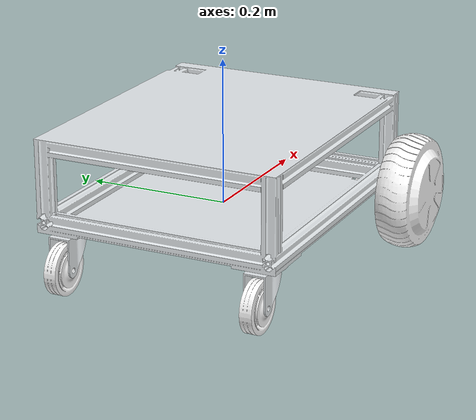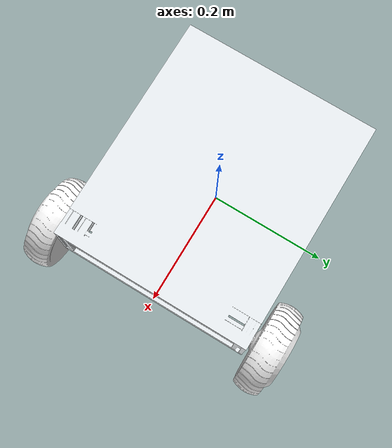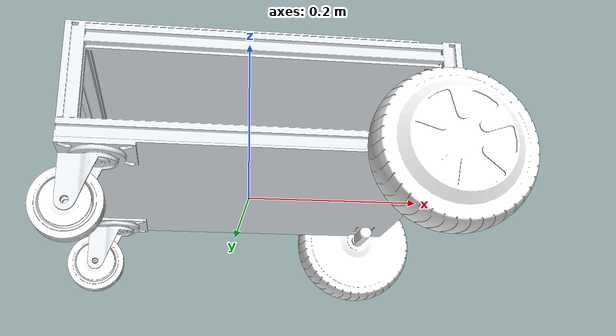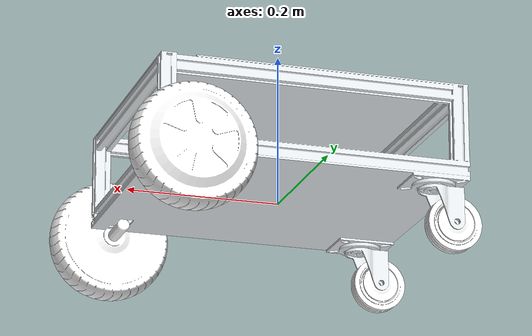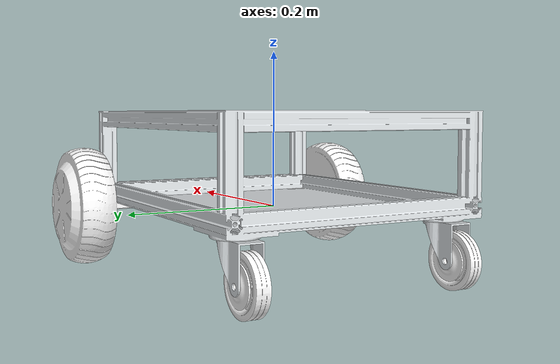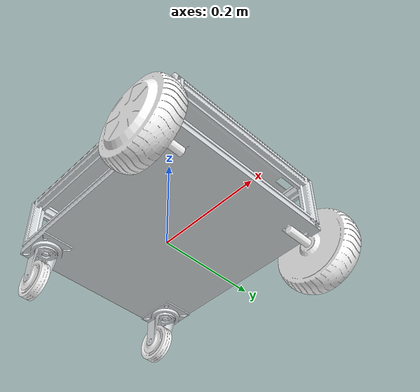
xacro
<?xml version="1.0" encoding="utf-8"?>
<robot xmlns:xacro="http://www.ros.org/wiki/xacro"
	name="blattoidea">
<link name="base_link" />
<joint name="base_link_to_chassis" type="fixed">
    <parent link="base_link"/>
    <child link="chassis"/>
  </joint>
  <link
    name="chassis">
    <inertial>
      <origin
        xyz="0.0045146 -5.164E-15 0.057846"
        rpy="0 0 0" />
      <mass
        value="3.1167" />
      <inertia
        ixx="0.019062"
        ixy="-7.8129E-14"
        ixz="-1.0872E-16"
        iyy="0.027663"
        iyz="-6.4246E-16"
        izz="0.046295" />
    </inertial>
    <visual>
      <origin
        xyz="0 0 0"
        rpy="0 0 0" />
      <geometry>
        <mesh
          filename="package://blattoidea/meshes/base_link.STL" />
      </geometry>
      <material
        name="">
        <color
          rgba="0.89804 0.91765 0.92941 1" />
      </material>
    </visual>
    <collision>
      <origin
        xyz="0 0 0"
        rpy="0 0 0" />
      <geometry>
        <mesh
          filename="package://blattoidea/meshes/base_link.STL" />
      </geometry>
    </collision>
  </link>
  <link
    name="lw_Link">
    <inertial>
      <origin
        xyz="0.080855 -1.8595E-13 -7.2809E-06"
        rpy="0 0 0" />
      <mass
        value="0.97717" />
      <inertia
        ixx="0.0027567"
        ixy="-1.0351E-14"
        ixz="-3.9098E-07"
        iyy="0.001617"
        iyz="4.5745E-16"
        izz="0.0016171" />
    </inertial>
    <visual>
      <origin
        xyz="0 0 0"
        rpy="0 0 0" />
      <geometry>
        <mesh
          filename="package://blattoidea/meshes/lw_Link.STL" />
      </geometry>
      <material
        name="">
        <color
          rgba="1 1 1 1" />
      </material>
    </visual>
    <collision>
      <origin
        xyz="0 0 0"
        rpy="0 0 0" />
      <geometry>
        <mesh
          filename="package://blattoidea/meshes/lw_Link.STL" />
      </geometry>
    </collision>
  </link>
  <joint
    name="lw_joint"
    type="continuous">
    <origin
      xyz="0.17114 0.1226 -0.006"
      rpy="-1.5708 0 1.5708" />
    <parent
      link="base_link" />
    <child
      link="lw_Link" />
    <axis
      xyz="1 0 0" />
      <dynamics damping="0.0" friction="0.0"/>
  </joint>
  <link
    name="rw_Link">
    <inertial>
      <origin
        xyz="0.080855 2.7863E-14 -7.2809E-06"
        rpy="0 0 0" />
      <mass
        value="0.97717" />
      <inertia
        ixx="0.0027567"
        ixy="-1.035E-14"
        ixz="-3.9098E-07"
        iyy="0.001617"
        iyz="4.5874E-16"
        izz="0.0016171" />
    </inertial>
    <visual>
      <origin
        xyz="0 0 0"
        rpy="0 0 0" />
      <geometry>
        <mesh
          filename="package://blattoidea/meshes/rw_Link.STL" />
      </geometry>
      <material
        name="">
        <color
          rgba="1 1 1 1" />
      </material>
    </visual>
    <collision>
      <origin
        xyz="0 0 0"
        rpy="0 0 0" />
      <geometry>
        <mesh
          filename="package://blattoidea/meshes/rw_Link.STL" />
      </geometry>
    </collision>
  </link>
  <joint
    name="rw_joint"
    type="continuous">
    <origin
      xyz="0.17114 -0.1226 -0.006"
      rpy="1.5708 0 -1.5708" />
    <parent
      link="base_link" />
    <child
      link="rw_Link" />
    <axis
      xyz="-1 0 0" />
      <dynamics damping="0.0" friction="0.0"/>
  </joint>
  <link
    name="r_caster_Link">
    <inertial>
      <origin
        xyz="-1.8867E-08 -0.017703 0.012932"
        rpy="0 0 0" />
      <mass
        value="0.026461" />
      <inertia
        ixx="1.1218E-05"
        ixy="3.2756E-12"
        ixz="-1.1431E-12"
        iyy="9.1178E-06"
        iyz="2.5189E-06"
        izz="1.0862E-05" />
    </inertial>
    <visual>
      <origin
        xyz="0 0 0"
        rpy="0 0 0" />
      <geometry>
        <mesh
          filename="package://blattoidea/meshes/r_caster_Link.STL" />
      </geometry>
      <material
        name="">
        <color
          rgba="0.89804 0.91765 0.92941 1" />
      </material>
    </visual>
    <collision>
      <origin
        xyz="0 0 0"
        rpy="0 0 0" />
      <geometry>
        <mesh
          filename="package://blattoidea/meshes/r_caster_Link.STL" />
      </geometry>
    </collision>
  </link>
  <joint
    name="r_caster_joint"
    type="continuous">
    <origin
      xyz="-0.15936 -0.14 -0.0051144"
      rpy="1.5182 0 -1.5708" />
    <parent
      link="base_link" />
    <child
      link="r_caster_Link" />
    <axis
      xyz="0 0.99862 0.052537" />
      <dynamics damping="0.0" friction="0.0"/>
  </joint>
  <link
    name="rc_wheel_Link">
    <inertial>
      <origin
        xyz="2.8588E-14 -7.8992E-14 2.9227E-14"
        rpy="0 0 0" />
      <mass
        value="0.0499" />
      <inertia
        ixx="3.5408E-05"
        ixy="1.3756E-22"
        ixz="-9.8358E-23"
        iyy="1.8462E-05"
        iyz="-2.8196E-22"
        izz="1.8462E-05" />
    </inertial>
    <visual>
      <origin
        xyz="0 0 0"
        rpy="0 0 0" />
      <geometry>
        <mesh
          filename="package://blattoidea/meshes/rc_wheel_Link.STL" />
      </geometry>
      <material
        name="">
        <color
          rgba="1 1 1 1" />
      </material>
    </visual>
    <collision>
      <origin
        xyz="0 0 0"
        rpy="0 0 0" />
      <geometry>
        <mesh
          filename="package://blattoidea/meshes/rc_wheel_Link.STL" />
      </geometry>
    </collision>
  </link>
  <joint
    name="rc_wheel_joint"
    type="continuous">
    <origin
      xyz="0 -0.049133 0.02245"
      rpy="-0.052561 0 3.1416" />
    <parent
      link="r_caster_Link" />
    <child
      link="rc_wheel_Link" />
    <axis
      xyz="1 0 0" />
      <dynamics damping="0.0" friction="0.0"/>
  </joint>
  <link
    name="l_caster_Link">
    <inertial>
      <origin
        xyz="-1.8867E-08 -0.017703 0.012932"
        rpy="0 0 0" />
      <mass
        value="0.026461" />
      <inertia
        ixx="1.1218E-05"
        ixy="3.2756E-12"
        ixz="-1.1431E-12"
        iyy="9.1178E-06"
        iyz="2.5189E-06"
        izz="1.0862E-05" />
    </inertial>
    <visual>
      <origin
        xyz="0 0 0"
        rpy="0 0 0" />
      <geometry>
        <mesh
          filename="package://blattoidea/meshes/l_caster_Link.STL" />
      </geometry>
      <material
        name="">
        <color
          rgba="0.89804 0.91765 0.92941 1" />
      </material>
    </visual>
    <collision>
      <origin
        xyz="0 0 0"
        rpy="0 0 0" />
      <geometry>
        <mesh
          filename="package://blattoidea/meshes/l_caster_Link.STL" />
      </geometry>
    </collision>
  </link>
  <joint
    name="l_caster_joint"
    type="continuous">
    <origin
      xyz="-0.15936 0.14 -0.0051144"
      rpy="1.5182 0 -1.5708" />
    <parent
      link="base_link" />
    <child
      link="l_caster_Link" />
    <axis
      xyz="0 0.99862 0.052537" />
      <dynamics damping="0.0" friction="0.0"/>
  </joint>
  <link
    name="lc_wheel_Link">
    <inertial>
      <origin
        xyz="3.7886E-14 3.1898E-14 1.2351E-14"
        rpy="0 0 0" />
      <mass
        value="0.0499" />
      <inertia
        ixx="3.5408E-05"
        ixy="5.3767E-22"
        ixz="-9.5971E-22"
        iyy="1.8462E-05"
        iyz="2.3036E-21"
        izz="1.8462E-05" />
    </inertial>
    <visual>
      <origin
        xyz="0 0 0"
        rpy="0 0 0" />
      <geometry>
        <mesh
          filename="package://blattoidea/meshes/lc_wheel_Link.STL" />
      </geometry>
      <material
        name="">
        <color
          rgba="1 1 1 1" />
      </material>
    </visual>
    <collision>
      <origin
        xyz="0 0 0"
        rpy="0 0 0" />
      <geometry>
        <mesh
          filename="package://blattoidea/meshes/lc_wheel_Link.STL" />
      </geometry>
    </collision>
  </link>
  <joint
    name="lc_wheel_joint"
    type="continuous">
    <origin
      xyz="0 -0.049133 0.02245"
      rpy="3.089 0 3.1416" />
    <parent
      link="l_caster_Link" />
    <child
      link="lc_wheel_Link" />
    <axis
      xyz="-1 0 0" />
      <dynamics damping="0.0" friction="0.0"/>
  </joint>

	<gazebo>
     <plugin name="JointStatePublisher" filename="libJointStatePublisher.so"/>
	</gazebo>
</robot>
